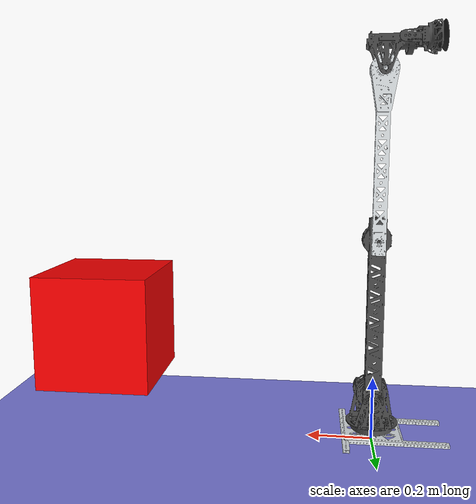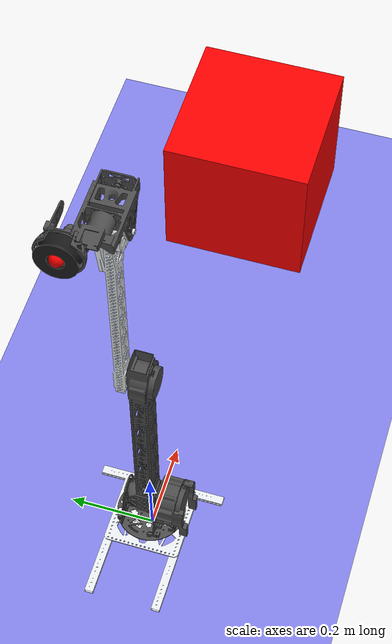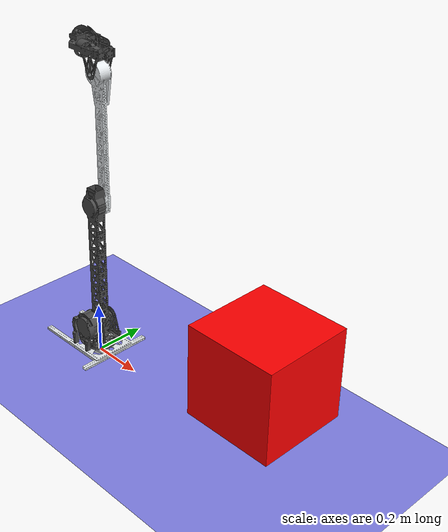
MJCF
<mujoco model="robotic_arm_urdf_scene">
  <option gravity="0 0 -9.81"/>
  <include file="robotic_arm.xml"/>

  <statistic center="0.35 0 0.25" extent="1.2"/>

  <visual>
    <headlight diffuse="0.2 0.2 0.2" ambient="0.35 0.35 0.35" specular="0.1 0.1 0.1"/>
    <rgba haze="0 0 0 0"/>
    <global offwidth="1920" offheight="1080"/>
  </visual>

  <default>
    <geom group="2" rgba="0.5 0.5 0.9 0.35"/>
  </default>

  <asset>
    <texture type="skybox" builtin="gradient" rgb1="0.35 0.55 0.75" rgb2="0.05 0.08 0.1" width="512" height="3072"/>
    <texture type="2d" name="groundplane" builtin="checker" mark="edge" rgb1="0.2 0.25 0.3" rgb2="0.12 0.16 0.2"
      markrgb="0.8 0.8 0.8" width="300" height="300"/>
    <material name="groundplane" texture="groundplane" texuniform="true" texrepeat="5 5" reflectance="0.2"/>
  </asset>

  <worldbody>
    <geom name="ground" type="plane" size="50 50 0.3" pos="0 0 0" material="groundplane" contype="0" conaffinity="0"/>
    <light name="main_light" pos="0 0 4" dir="0 0 -1" directional="true"/>
    <body name="box" pos="0.85 0 0.358">
        <geom type="box"
              size="0.175 0.175 0.175"
              rgba="1 0 0 1"
              contype="0"
              conaffinity="0"/>
    </body>
  </worldbody>
</mujoco>

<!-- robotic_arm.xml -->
<mujoco model="robotic_arm">
  <compiler angle="radian" eulerseq="zyx"/>
  <asset>
    <mesh name="base_link" file="base_link.STL" />
    <mesh name="Link1" file="Link1.STL" />
    <mesh name="Link2" file="Link2.STL" />
    <mesh name="Link3" file="Link3.STL" />
    <mesh name="Link4" file="Link4.STL" />
    <mesh name="Link5" file="Link5.STL" />
    <mesh name="Link6" file="Link6.STL" />
  </asset>
  <worldbody>
    <body name="base_link">
      <inertial pos="-0.00314477810784158 6.07502628329482e-05 0.0309288884499073" mass="1.0608896790749" fullinertia="0.00136348954613313 0.00173058869239426 0.00302869715684903 1.09519148431788e-06 -5.43320405230057e-07 2.26094630333631e-07" />
      <geom type="mesh" rgba="0.898039215686275 0.917647058823529 0.929411764705882 1" mesh="base_link" />
      <site name="tool_site" pos="0 0 0" size="0.01" />
      <body name="Link1" pos="0 0 0.04875" euler="0 0 0">
        <inertial pos="-4.33801167989273e-06 -0.0337129934218405 0.0693888972185664" mass="1.3415964916658" fullinertia="0.00104703767087083 0.00166971689932541 0.00125544090285874 -6.13527281147485e-07 1.1397456426102e-05 -2.32711829794906e-06" />
        <joint name="joint1" pos="0 0 0" axis="0 0 -1" range="-3.1 3.1" actuatorfrcrange="-50 50" />
        <geom type="mesh" rgba="0.294117647058824 0.294117647058824 0.294117647058824 1" mesh="Link1" />
        <body name="Link2" pos="0 -0.02575 0.08875" euler="-1.5708 -1.5708 0">
          <inertial pos="0.365853216628188 -0.000167570867919797 0.0278793123516113" mass="1.1688360536306" fullinertia="0.000605176798012729 0.0101407081904813 0.0104820269965559 5.97640808836259e-07 -6.65219351214428e-05 -1.35057504964255e-06" />
          <joint name="joint2" pos="0 0 0" axis="0 0 -1" range="-1.57 1.57" actuatorfrcrange="-50 50" />
          <geom type="mesh" rgba="0.294117647058824 0.294117647058824 0.294117647058824 1" mesh="Link2" />
          <body name="Link3" pos="0.5 0 0.044" euler="0 0 0">
            <inertial pos="0.387625948144578 0.000578440683585479 0.0275474663113074" mass="0.697933163337346" fullinertia="0.000283268094638963 0.00327137348888359 0.00350366691281038 1.82230790247392e-06 -3.36290808401328e-06 1.48813554147957e-06" />
            <joint name="joint3" pos="0 0 0" axis="0 0 1" range="-2.9 2.9" actuatorfrcrange="-50 50" />
            <geom type="mesh" rgba="0.898039215686275 0.917647058823529 0.929411764705882 1" mesh="Link3" />
            <body name="Link4" pos="0.49464 0 0.04645" euler="0 0 0">
              <inertial pos="0.070676368899276 -0.0400413645185225 -0.0239463858952916" mass="0.37892648177412" fullinertia="0.000174029918781671 0.000191074267942647 0.000202618171796121 5.18282255506871e-06 -6.09003216159317e-08 -2.79403838333222e-07" />
              <joint name="joint4" pos="0 0 0" axis="0 0 -1" range="-2 2" actuatorfrcrange="-50 50" />
              <geom type="mesh" rgba="0.294117647058824 0.294117647058824 0.294117647058824 1" mesh="Link4" />
              <camera name="camera" pos="0.1 -0.09 -0.03" xyaxes="0 -1 0 0 0 1" />
              <body name="Link5" pos="0.076 -0.044 -0.02455" euler="-1.5708 0 0">
                <inertial pos="0.0451968277403802 -7.88179412723744e-06 0.0419533410672925" mass="0.112337074738347" fullinertia="2.52285225497034e-05 2.87650929013733e-05 3.6214455173519e-05 -5.91425386067044e-10 -1.35065360622416e-13 1.31696157156535e-08" />
                <joint name="joint5" pos="0 0 0" axis="0 0 1" range="-0.4 0.4" actuatorfrcrange="-50 50" />
                <geom type="mesh" rgba="0.294117647058824 0.294117647058824 0.294117647058824 1" mesh="Link5" />
                <body name="Link6" pos="0.055 0 0.04675" euler="-1.333 1.5708 -1.4022">
                  <inertial pos="-1.11022302462516e-16 7.49400541621981e-16 0.0373009014980973" mass="0.150213928644986" fullinertia="7.59512548879522e-05 7.59512548879522e-05 0.00011238690149753 -2.96461531539005e-21 3.3881317890172e-21 -1.21760986167806e-20" />
                  <joint name="joint6" pos="0 0 0" axis="0 0 1" range="0 0" actuatorfrcrange="-50 50" />
                  <geom type="mesh" rgba="0.113725490196078 0.113725490196078 0.113725490196078 1" mesh="Link6" />
                  <site name="ee_site" pos="0 0 0.05" size="0.01" />
                  <body name="end_effector" pos="0 0 0.05">
                    <geom type="sphere" size="0.015" rgba="1 0 0 1" />
                  </body>
                </body>
              </body>
            </body>
          </body>
        </body>
      </body>
    </body>
  </worldbody>
  <contact>
    <exclude body1="base_link" body2="Link1" />
    <exclude body1="Link1" body2="Link2" />
    <exclude body1="Link2" body2="Link3" />
    <exclude body1="Link3" body2="Link4" />
    <exclude body1="Link4" body2="Link5" />
    <exclude body1="Link5" body2="Link6" />
  </contact>
  <actuator>
    <motor name="motor1" joint="joint1" gear="1" ctrllimited="true" ctrlrange="-50 50" />
    <motor name="motor2" joint="joint2" gear="1" ctrllimited="true" ctrlrange="-50 50" />
    <motor name="motor3" joint="joint3" gear="1" ctrllimited="true" ctrlrange="-50 50" />
    <motor name="motor4" joint="joint4" gear="1" ctrllimited="true" ctrlrange="-50 50" />
    <motor name="motor5" joint="joint5" gear="1" ctrllimited="true" ctrlrange="-50 50" />
    <motor name="motor6" joint="joint6" gear="1" ctrllimited="true" ctrlrange="-50 50" />
  </actuator>
  <sensor>
    <actuatorpos name="motor1_p" actuator="motor1" />
    <actuatorpos name="motor2_p" actuator="motor2" />
    <actuatorpos name="motor3_p" actuator="motor3" />
    <actuatorpos name="motor4_p" actuator="motor4" />
    <actuatorpos name="motor5_p" actuator="motor5" />
    <actuatorpos name="motor6_p" actuator="motor6" />
    <actuatorvel name="motor1_v" actuator="motor1" />
    <actuatorvel name="motor2_v" actuator="motor2" />
    <actuatorvel name="motor3_v" actuator="motor3" />
    <actuatorvel name="motor4_v" actuator="motor4" />
    <actuatorvel name="motor5_v" actuator="motor5" />
    <actuatorvel name="motor6_v" actuator="motor6" />
    <actuatorfrc name="motor1_f" actuator="motor1" noise="1e-3" />
    <actuatorfrc name="motor2_f" actuator="motor2" noise="1e-3" />
    <actuatorfrc name="motor3_f" actuator="motor3" noise="1e-3" />
    <actuatorfrc name="motor4_f" actuator="motor4" noise="1e-3" />
    <actuatorfrc name="motor5_f" actuator="motor5" noise="1e-3" />
    <actuatorfrc name="motor6_f" actuator="motor6" noise="1e-3" />
    <framepos name="ee_pos" objtype="site" objname="ee_site" />
    <framequat name="ee_quat" objtype="site" objname="ee_site" />
  </sensor>
</mujoco>
